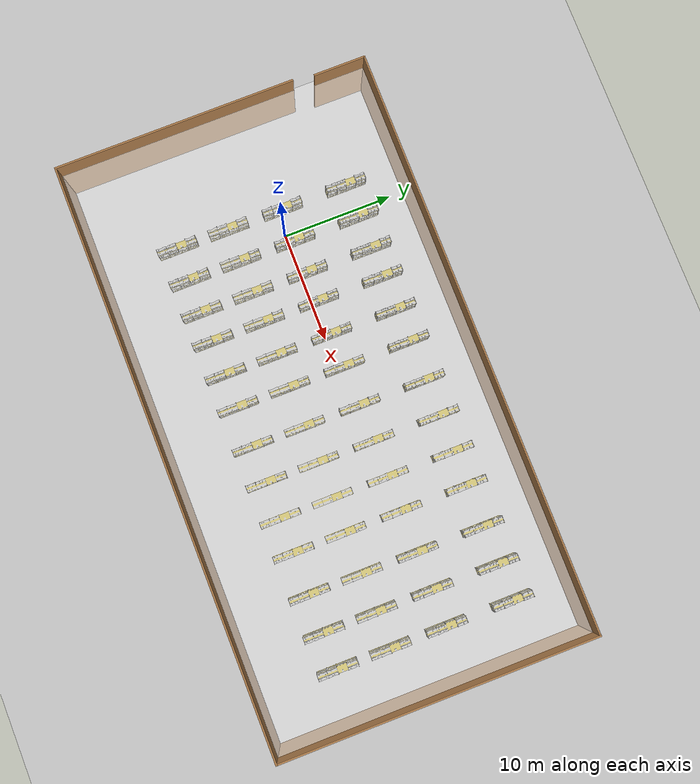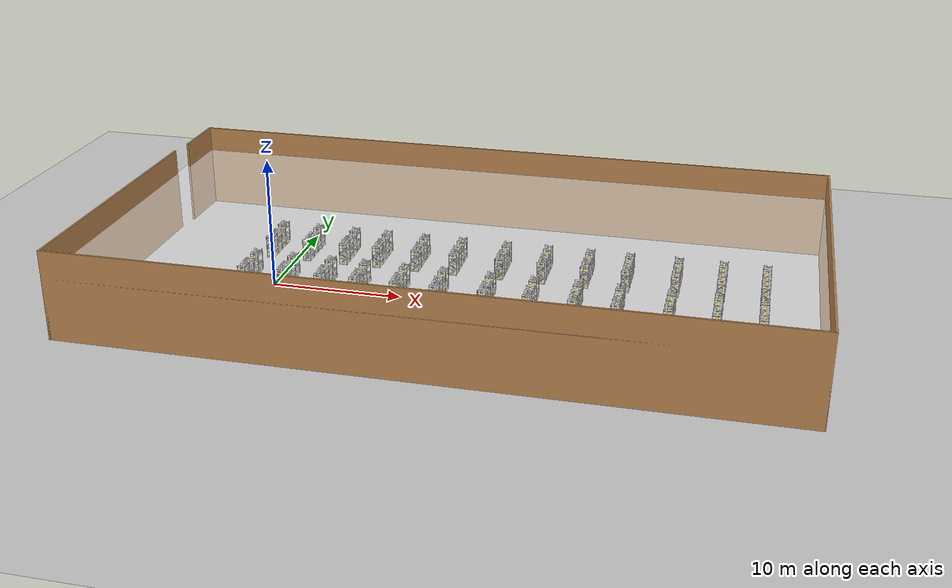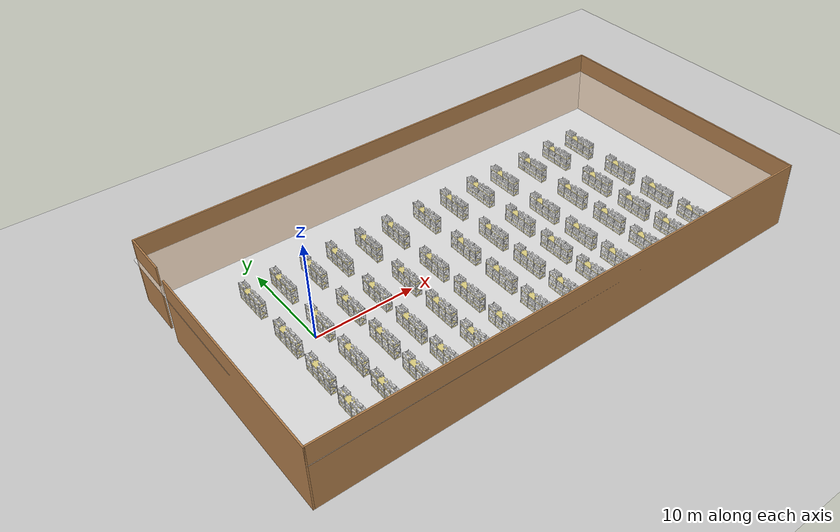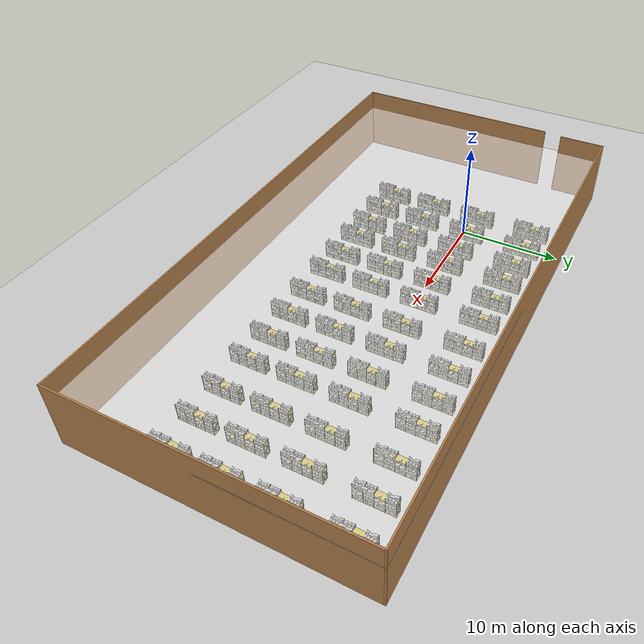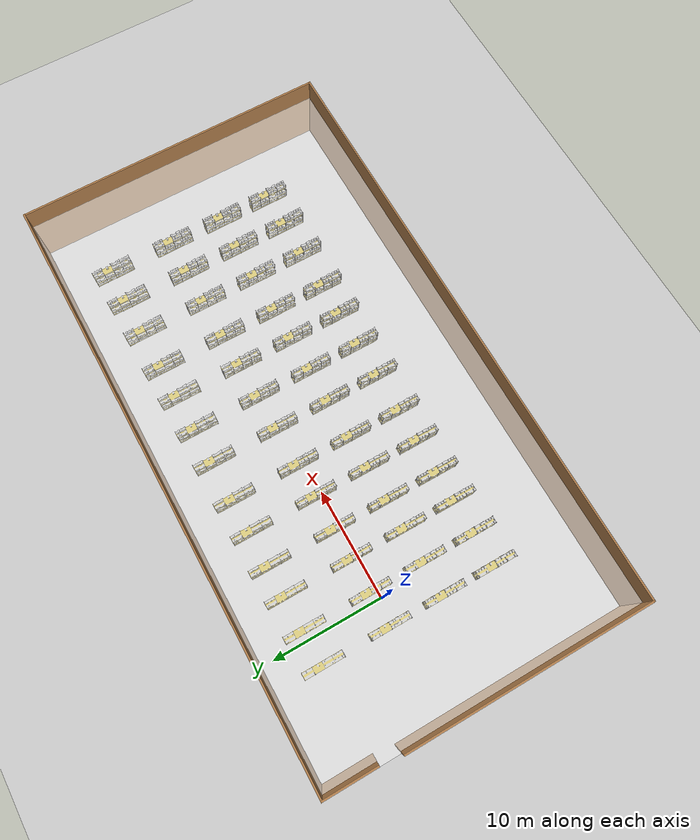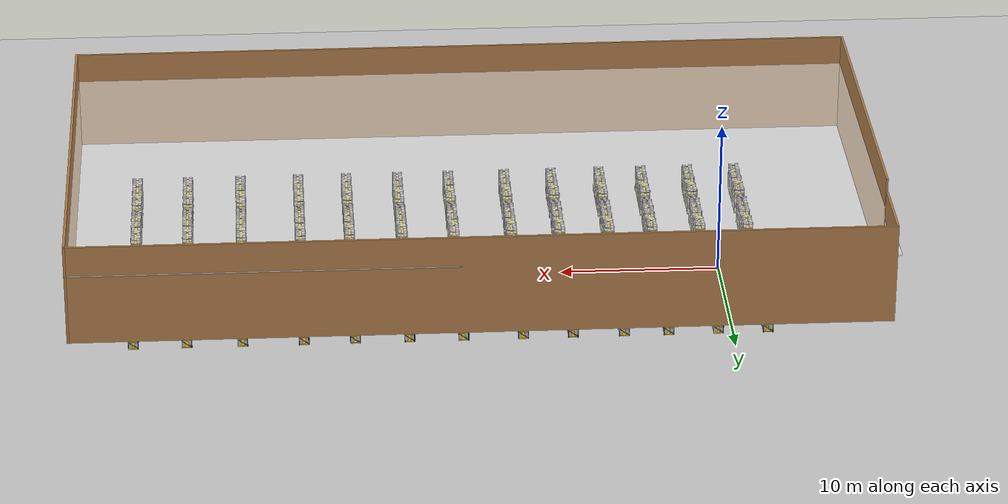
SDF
<sdf version="1.7">
 <world name="default">
  <light name="sun" type="directional">
   <pose>0 0 10 0 -0 0</pose>
   <diffuse>0.8 0.8 0.8 1</diffuse>
   <specular>0.2 0.2 0.2 1</specular>
   <attenuation>
    <range>1000</range>
    <constant>0.9</constant>
    <linear>0.01</linear>
    <quadratic>0.001</quadratic>
   </attenuation>
   <direction>-0.5 0.1 -0.9</direction>
   <spot><inner_angle>0</inner_angle><outer_angle>0</outer_angle><falloff>0</falloff></spot>
  </light>
  <model name="ground_plane">
   <static>1</static>
   <link name="link">
    <collision name="collision">
     <geometry><plane><normal>0 0 1</normal><size>100 100</size></plane></geometry>
     <surface>
      <contact><collide_bitmask>65535</collide_bitmask></contact>
      <friction><ode><mu>100</mu><mu2>50</mu2></ode></friction>
     </surface>
    </collision>
    <visual name="visual">
     <cast_shadows>0</cast_shadows>
     <geometry><plane><normal>0 0 1</normal><size>100 100</size></plane></geometry>
     <material>
      <script><uri>file://media/materials/scripts/gazebo.material</uri><name>Gazebo/Grey</name></script>
     </material>
    </visual>
   </link>
  </model>
  <gravity>0 0 -9.8</gravity>
  <magnetic_field>6e-06 2.3e-05 -4.2e-05</magnetic_field>
  <atmosphere type="adiabatic"/>
  <physics type="ode">
   <max_step_size>0.001</max_step_size>
   <real_time_factor>1</real_time_factor>
   <real_time_update_rate>1000</real_time_update_rate>
  </physics>
  <scene><ambient>0.4 0.4 0.4 1</ambient><background>0.7 0.7 0.7 1</background><shadows>1</shadows></scene>
  <spherical_coordinates>
   <surface_model>EARTH_WGS84</surface_model>
   <latitude_deg>0</latitude_deg>
   <longitude_deg>0</longitude_deg>
   <elevation>0</elevation>
   <heading_deg>0</heading_deg>
  </spherical_coordinates>
  <model name="Untitled">
   <pose>15.454 -2.50054 4 0 -0 0</pose>
   <link name="Floor_0">
    <collision name="Floor_0_Collision">
     <geometry><box><size>50.5 27 0.1</size></box></geometry>
     <pose>0 0 0.05 0 -0 0</pose>
    </collision>
    <visual name="Floor_0_Visual">
     <pose>0 0 0.05 0 -0 0</pose>
     <geometry><box><size>50.5 27 0.1</size></box></geometry>
     <material><ambient>1 1 1 0.5</ambient><diffuse>1 1 1 0.5</diffuse></material>
     <meta><layer>1</layer></meta>
    </visual>
    <pose>1e-06 0 2.5 0 -0 0</pose>
   </link>
   <link name="Wall_0">
    <collision name="Wall_0_Collision">
     <geometry><box><size>20.75 0.15 6.5</size></box></geometry>
     <pose>0 0 1.25 0 -0 0</pose>
    </collision>
    <visual name="Wall_0_Visual">
     <pose>0 0 1.25 0 -0 0</pose>
     <geometry><box><size>20.75 0.15 6.5</size></box></geometry>
     <material>
      <script><uri>file://media/materials/scripts/gazebo.material</uri><name>Gazebo/Wood</name></script>
      <ambient>1 1 1 1</ambient>
     </material>
     <meta><layer>0</layer></meta>
    </visual>
    <pose>-25.175 -3.125 0 0 -0 -1.5708</pose>
   </link>
   <link name="Wall_1">
    <collision name="Wall_1_Collision">
     <geometry><box><size>50.5 0.15 6.5</size></box></geometry>
     <pose>0 0 1.25 0 -0 0</pose>
    </collision>
    <visual name="Wall_1_Visual">
     <pose>0 0 1.25 0 -0 0</pose>
     <geometry><box><size>50.5 0.15 6.5</size></box></geometry>
     <material>
      <script><uri>file://media/materials/scripts/gazebo.material</uri><name>Gazebo/Wood</name></script>
      <ambient>1 1 1 1</ambient>
     </material>
     <meta><layer>0</layer></meta>
    </visual>
    <pose>0 -13.425 0 0 -0 0</pose>
   </link>
   <link name="Wall_2">
    <collision name="Wall_2_Collision">
     <geometry><box><size>27 0.15 6.5</size></box></geometry>
     <pose>0 0 1.25 0 -0 0</pose>
    </collision>
    <visual name="Wall_2_Visual">
     <pose>0 0 1.25 0 -0 0</pose>
     <geometry><box><size>27 0.15 6.5</size></box></geometry>
     <material>
      <script><uri>file://media/materials/scripts/gazebo.material</uri><name>Gazebo/Wood</name></script>
      <ambient>1 1 1 1</ambient>
     </material>
     <meta><layer>0</layer></meta>
    </visual>
    <pose>25.175 0 0 0 -0 1.5708</pose>
   </link>
   <link name="Wall_3">
    <collision name="Wall_3_Collision">
     <geometry><box><size>50.25 0.15 6.5</size></box></geometry>
     <pose>0 0 1.25 0 -0 0</pose>
    </collision>
    <visual name="Wall_3_Visual">
     <pose>0 0 1.25 0 -0 0</pose>
     <geometry><box><size>50.25 0.15 6.5</size></box></geometry>
     <material>
      <script><uri>file://media/materials/scripts/gazebo.material</uri><name>Gazebo/Wood</name></script>
      <ambient>1 1 1 1</ambient>
     </material>
     <meta><layer>0</layer></meta>
    </visual>
    <pose>0.125 13.425 0 0 -0 3.14159</pose>
   </link>
   <link name="Wall_4">
    <collision name="Wall_4_Collision">
     <geometry><box><size>4.5 0.15 6.5</size></box></geometry>
     <pose>0 0 1.25 0 -0 0</pose>
    </collision>
    <visual name="Wall_4_Visual">
     <pose>0 0 1.25 0 -0 0</pose>
     <geometry><box><size>4.5 0.15 6.5</size></box></geometry>
     <material>
      <script><uri>file://media/materials/scripts/gazebo.material</uri><name>Gazebo/Wood</name></script>
      <ambient>1 1 1 1</ambient>
     </material>
     <meta><layer>0</layer></meta>
    </visual>
    <pose>-24.925 11.25 0 0 -0 -1.5708</pose>
   </link>
   <static>1</static>
  </model>
  <model name="shelf_aruco">
   <pose>-2.17709 -8.77278 0 0 -0 1.57253</pose>
   <link name="shelf_base">
    <pose>-0.5 0 0 0 -0 0</pose>
    <collision name="shelf_chassi_collision">
     <pose>0 0 0.9 0 -0 0</pose>
     <geometry><box><size>3.6 0.6 1.8</size></box></geometry>
    </collision>
    <visual name="shelf_chassi_visual">
     <geometry>
      <mesh>
       <scale>0.2 0.3 0.3</scale>
       <uri>../astra_gazebo_models/Shelf_with_ARUco_boxes/meshes/shelf_big_movai.dae</uri>
      </mesh>
     </geometry>
    </visual>
   </link>
   <static>1</static>
  </model>
  <model name="shelf_aruco_clone">
   <pose>-2.17709 -4 0 0 -0 1.57253</pose>
   <link name="shelf_base">
    <pose>-0.5 0 0 0 -0 0</pose>
    <collision name="shelf_chassi_collision">
     <pose>0 0 0.9 0 -0 0</pose>
     <geometry><box><size>3.6 0.6 1.8</size></box></geometry>
    </collision>
    <visual name="shelf_chassi_visual">
     <geometry>
      <mesh>
       <scale>0.2 0.3 0.3</scale>
       <uri>../astra_gazebo_models/Shelf_with_ARUco_boxes/meshes/shelf_big_movai.dae</uri>
      </mesh>
     </geometry>
    </visual>
   </link>
   <static>1</static>
  </model>
  <model name="shelf_aruco_clone_clone">
   <pose>-2.17709 1.10242 0 0 -0 1.57253</pose>
   <link name="shelf_base">
    <pose>-0.5 0 0 0 -0 0</pose>
    <collision name="shelf_chassi_collision">
     <pose>0 0 0.9 0 -0 0</pose>
     <geometry><box><size>3.6 0.6 1.8</size></box></geometry>
    </collision>
    <visual name="shelf_chassi_visual">
     <geometry>
      <mesh>
       <scale>0.2 0.3 0.3</scale>
       <uri>../astra_gazebo_models/Shelf_with_ARUco_boxes/meshes/shelf_big_movai.dae</uri>
      </mesh>
     </geometry>
    </visual>
   </link>
   <static>1</static>
  </model>
  <model name="shelf_aruco_clone_clone_0">
   <pose>-2.17709 7.12586 0 0 -0 1.57253</pose>
   <link name="shelf_base">
    <pose>-0.5 0 0 0 -0 0</pose>
    <collision name="shelf_chassi_collision">
     <pose>0 0 0.9 0 -0 0</pose>
     <geometry><box><size>3.6 0.6 1.8</size></box></geometry>
    </collision>
    <visual name="shelf_chassi_visual">
     <geometry>
      <mesh>
       <scale>0.2 0.3 0.3</scale>
       <uri>../astra_gazebo_models/Shelf_with_ARUco_boxes/meshes/shelf_big_movai.dae</uri>
      </mesh>
     </geometry>
    </visual>
   </link>
   <static>1</static>
  </model>
  <model name="shelf_aruco_clone_1">
   <pose>0.89089 7.12586 0 0 -0 1.57253</pose>
   <link name="shelf_base">
    <pose>-0.5 0 0 0 -0 0</pose>
    <collision name="shelf_chassi_collision">
     <pose>0 0 0.9 0 -0 0</pose>
     <geometry><box><size>3.6 0.6 1.8</size></box></geometry>
    </collision>
    <visual name="shelf_chassi_visual">
     <geometry>
      <mesh>
       <scale>0.2 0.3 0.3</scale>
       <uri>../astra_gazebo_models/Shelf_with_ARUco_boxes/meshes/shelf_big_movai.dae</uri>
      </mesh>
     </geometry>
    </visual>
   </link>
   <static>1</static>
  </model>
  <model name="shelf_aruco_clone_1_clone">
   <pose>3.95435 7.12586 0 0 -0 1.57253</pose>
   <link name="shelf_base">
    <pose>-0.5 0 0 0 -0 0</pose>
    <collision name="shelf_chassi_collision">
     <pose>0 0 0.9 0 -0 0</pose>
     <geometry><box><size>3.6 0.6 1.8</size></box></geometry>
    </collision>
    <visual name="shelf_chassi_visual">
     <geometry>
      <mesh>
       <scale>0.2 0.3 0.3</scale>
       <uri>../astra_gazebo_models/Shelf_with_ARUco_boxes/meshes/shelf_big_movai.dae</uri>
      </mesh>
     </geometry>
    </visual>
   </link>
   <static>1</static>
  </model>
  <model name="shelf_aruco_clone_1_clone_0">
   <pose>6.69861 7.12586 0 0 -0 1.57253</pose>
   <link name="shelf_base">
    <pose>-0.5 0 0 0 -0 0</pose>
    <collision name="shelf_chassi_collision">
     <pose>0 0 0.9 0 -0 0</pose>
     <geometry><box><size>3.6 0.6 1.8</size></box></geometry>
    </collision>
    <visual name="shelf_chassi_visual">
     <geometry>
      <mesh>
       <scale>0.2 0.3 0.3</scale>
       <uri>../astra_gazebo_models/Shelf_with_ARUco_boxes/meshes/shelf_big_movai.dae</uri>
      </mesh>
     </geometry>
    </visual>
   </link>
   <static>1</static>
  </model>
  <model name="shelf_aruco_clone_1_clone_1">
   <pose>9.85525 7.12586 0 0 -0 1.57253</pose>
   <link name="shelf_base">
    <pose>-0.5 0 0 0 -0 0</pose>
    <collision name="shelf_chassi_collision">
     <pose>0 0 0.9 0 -0 0</pose>
     <geometry><box><size>3.6 0.6 1.8</size></box></geometry>
    </collision>
    <visual name="shelf_chassi_visual">
     <geometry>
      <mesh>
       <scale>0.2 0.3 0.3</scale>
       <uri>../astra_gazebo_models/Shelf_with_ARUco_boxes/meshes/shelf_big_movai.dae</uri>
      </mesh>
     </geometry>
    </visual>
   </link>
   <static>1</static>
  </model>
  <model name="shelf_aruco_clone_1_clone_2">
   <pose>12.9196 7.12586 0 0 -0 1.57253</pose>
   <link name="shelf_base">
    <pose>-0.5 0 0 0 -0 0</pose>
    <collision name="shelf_chassi_collision">
     <pose>0 0 0.9 0 -0 0</pose>
     <geometry><box><size>3.6 0.6 1.8</size></box></geometry>
    </collision>
    <visual name="shelf_chassi_visual">
     <geometry>
      <mesh>
       <scale>0.2 0.3 0.3</scale>
       <uri>../astra_gazebo_models/Shelf_with_ARUco_boxes/meshes/shelf_big_movai.dae</uri>
      </mesh>
     </geometry>
    </visual>
   </link>
   <static>1</static>
  </model>
  <model name="shelf_aruco_clone_1_clone_3">
   <pose>16.5878 7.12586 0 0 -0 1.57253</pose>
   <link name="shelf_base">
    <pose>-0.5 0 0 0 -0 0</pose>
    <collision name="shelf_chassi_collision">
     <pose>0 0 0.9 0 -0 0</pose>
     <geometry><box><size>3.6 0.6 1.8</size></box></geometry>
    </collision>
    <visual name="shelf_chassi_visual">
     <geometry>
      <mesh>
       <scale>0.2 0.3 0.3</scale>
       <uri>../astra_gazebo_models/Shelf_with_ARUco_boxes/meshes/shelf_big_movai.dae</uri>
      </mesh>
     </geometry>
    </visual>
   </link>
   <static>1</static>
  </model>
  <model name="shelf_aruco_clone_1_clone_4">
   <pose>19.8997 7.12586 0 0 -0 1.57253</pose>
   <link name="shelf_base">
    <pose>-0.5 0 0 0 -0 0</pose>
    <collision name="shelf_chassi_collision">
     <pose>0 0 0.9 0 -0 0</pose>
     <geometry><box><size>3.6 0.6 1.8</size></box></geometry>
    </collision>
    <visual name="shelf_chassi_visual">
     <geometry>
      <mesh>
       <scale>0.2 0.3 0.3</scale>
       <uri>../astra_gazebo_models/Shelf_with_ARUco_boxes/meshes/shelf_big_movai.dae</uri>
      </mesh>
     </geometry>
    </visual>
   </link>
   <static>1</static>
  </model>
  <model name="shelf_aruco_clone_1_clone_5">
   <pose>23.2384 7.12586 0 0 -0 1.57253</pose>
   <link name="shelf_base">
    <pose>-0.5 0 0 0 -0 0</pose>
    <collision name="shelf_chassi_collision">
     <pose>0 0 0.9 0 -0 0</pose>
     <geometry><box><size>3.6 0.6 1.8</size></box></geometry>
    </collision>
    <visual name="shelf_chassi_visual">
     <geometry>
      <mesh>
       <scale>0.2 0.3 0.3</scale>
       <uri>../astra_gazebo_models/Shelf_with_ARUco_boxes/meshes/shelf_big_movai.dae</uri>
      </mesh>
     </geometry>
    </visual>
   </link>
   <static>1</static>
  </model>
  <model name="shelf_aruco_clone_1_clone_6">
   <pose>26.3764 7.12586 0 0 -0 1.57253</pose>
   <link name="shelf_base">
    <pose>-0.5 0 0 0 -0 0</pose>
    <collision name="shelf_chassi_collision">
     <pose>0 0 0.9 0 -0 0</pose>
     <geometry><box><size>3.6 0.6 1.8</size></box></geometry>
    </collision>
    <visual name="shelf_chassi_visual">
     <geometry>
      <mesh>
       <scale>0.2 0.3 0.3</scale>
       <uri>../astra_gazebo_models/Shelf_with_ARUco_boxes/meshes/shelf_big_movai.dae</uri>
      </mesh>
     </geometry>
    </visual>
   </link>
   <static>1</static>
  </model>
  <model name="shelf_aruco_clone_1_clone_7">
   <pose>30.1327 7.12586 0 0 -0 1.57253</pose>
   <link name="shelf_base">
    <pose>-0.5 0 0 0 -0 0</pose>
    <collision name="shelf_chassi_collision">
     <pose>0 0 0.9 0 -0 0</pose>
     <geometry><box><size>3.6 0.6 1.8</size></box></geometry>
    </collision>
    <visual name="shelf_chassi_visual">
     <geometry>
      <mesh>
       <scale>0.2 0.3 0.3</scale>
       <uri>../astra_gazebo_models/Shelf_with_ARUco_boxes/meshes/shelf_big_movai.dae</uri>
      </mesh>
     </geometry>
    </visual>
   </link>
   <static>1</static>
  </model>
  <model name="shelf_aruco_clone_1_clone_8">
   <pose>33.5427 7.12586 0 0 -0 1.57253</pose>
   <link name="shelf_base">
    <pose>-0.5 0 0 0 -0 0</pose>
    <collision name="shelf_chassi_collision">
     <pose>0 0 0.9 0 -0 0</pose>
     <geometry><box><size>3.6 0.6 1.8</size></box></geometry>
    </collision>
    <visual name="shelf_chassi_visual">
     <geometry>
      <mesh>
       <scale>0.2 0.3 0.3</scale>
       <uri>../astra_gazebo_models/Shelf_with_ARUco_boxes/meshes/shelf_big_movai.dae</uri>
      </mesh>
     </geometry>
    </visual>
   </link>
   <static>1</static>
  </model>
  <model name="shelf_aruco_clone_1_clone_9">
   <pose>36.8157 7.12586 0 0 -0 1.57253</pose>
   <link name="shelf_base">
    <pose>-0.5 0 0 0 -0 0</pose>
    <collision name="shelf_chassi_collision">
     <pose>0 0 0.9 0 -0 0</pose>
     <geometry><box><size>3.6 0.6 1.8</size></box></geometry>
    </collision>
    <visual name="shelf_chassi_visual">
     <geometry>
      <mesh>
       <scale>0.2 0.3 0.3</scale>
       <uri>../astra_gazebo_models/Shelf_with_ARUco_boxes/meshes/shelf_big_movai.dae</uri>
      </mesh>
     </geometry>
    </visual>
   </link>
   <static>1</static>
  </model>
  <model name="shelf_aruco_clone_clone_0_clone">
   <pose>0.89089 1.10242 0 0 -0 1.57253</pose>
   <link name="shelf_base">
    <pose>-0.5 0 0 0 -0 0</pose>
    <collision name="shelf_chassi_collision">
     <pose>0 0 0.9 0 -0 0</pose>
     <geometry><box><size>3.6 0.6 1.8</size></box></geometry>
    </collision>
    <visual name="shelf_chassi_visual">
     <geometry>
      <mesh>
       <scale>0.2 0.3 0.3</scale>
       <uri>../astra_gazebo_models/Shelf_with_ARUco_boxes/meshes/shelf_big_movai.dae</uri>
      </mesh>
     </geometry>
    </visual>
   </link>
   <static>1</static>
  </model>
  <model name="shelf_aruco_clone_clone_0_clone_0">
   <pose>3.95435 1.10242 0 0 -0 1.57253</pose>
   <link name="shelf_base">
    <pose>-0.5 0 0 0 -0 0</pose>
    <collision name="shelf_chassi_collision">
     <pose>0 0 0.9 0 -0 0</pose>
     <geometry><box><size>3.6 0.6 1.8</size></box></geometry>
    </collision>
    <visual name="shelf_chassi_visual">
     <geometry>
      <mesh>
       <scale>0.2 0.3 0.3</scale>
       <uri>../astra_gazebo_models/Shelf_with_ARUco_boxes/meshes/shelf_big_movai.dae</uri>
      </mesh>
     </geometry>
    </visual>
   </link>
   <static>1</static>
  </model>
  <model name="shelf_aruco_clone_clone_0_clone_1">
   <pose>6.69861 1.10242 0 0 -0 1.57253</pose>
   <link name="shelf_base">
    <pose>-0.5 0 0 0 -0 0</pose>
    <collision name="shelf_chassi_collision">
     <pose>0 0 0.9 0 -0 0</pose>
     <geometry><box><size>3.6 0.6 1.8</size></box></geometry>
    </collision>
    <visual name="shelf_chassi_visual">
     <geometry>
      <mesh>
       <scale>0.2 0.3 0.3</scale>
       <uri>../astra_gazebo_models/Shelf_with_ARUco_boxes/meshes/shelf_big_movai.dae</uri>
      </mesh>
     </geometry>
    </visual>
   </link>
   <static>1</static>
  </model>
  <model name="shelf_aruco_clone_clone_0_clone_2">
   <pose>9.85525 1.10242 0 0 -0 1.57253</pose>
   <link name="shelf_base">
    <pose>-0.5 0 0 0 -0 0</pose>
    <collision name="shelf_chassi_collision">
     <pose>0 0 0.9 0 -0 0</pose>
     <geometry><box><size>3.6 0.6 1.8</size></box></geometry>
    </collision>
    <visual name="shelf_chassi_visual">
     <geometry>
      <mesh>
       <scale>0.2 0.3 0.3</scale>
       <uri>../astra_gazebo_models/Shelf_with_ARUco_boxes/meshes/shelf_big_movai.dae</uri>
      </mesh>
     </geometry>
    </visual>
   </link>
   <static>1</static>
  </model>
  <model name="shelf_aruco_clone_clone_0_clone_3">
   <pose>12.9196 1.10242 0 0 -0 1.57253</pose>
   <link name="shelf_base">
    <pose>-0.5 0 0 0 -0 0</pose>
    <collision name="shelf_chassi_collision">
     <pose>0 0 0.9 0 -0 0</pose>
     <geometry><box><size>3.6 0.6 1.8</size></box></geometry>
    </collision>
    <visual name="shelf_chassi_visual">
     <geometry>
      <mesh>
       <scale>0.2 0.3 0.3</scale>
       <uri>../astra_gazebo_models/Shelf_with_ARUco_boxes/meshes/shelf_big_movai.dae</uri>
      </mesh>
     </geometry>
    </visual>
   </link>
   <static>1</static>
  </model>
  <model name="shelf_aruco_clone_clone_0_clone_4">
   <pose>16.5878 1.10242 0 0 -0 1.57253</pose>
   <link name="shelf_base">
    <pose>-0.5 0 0 0 -0 0</pose>
    <collision name="shelf_chassi_collision">
     <pose>0 0 0.9 0 -0 0</pose>
     <geometry><box><size>3.6 0.6 1.8</size></box></geometry>
    </collision>
    <visual name="shelf_chassi_visual">
     <geometry>
      <mesh>
       <scale>0.2 0.3 0.3</scale>
       <uri>../astra_gazebo_models/Shelf_with_ARUco_boxes/meshes/shelf_big_movai.dae</uri>
      </mesh>
     </geometry>
    </visual>
   </link>
   <static>1</static>
  </model>
  <model name="shelf_aruco_clone_clone_0_clone_5">
   <pose>19.8997 1.10242 0 0 -0 1.57253</pose>
   <link name="shelf_base">
    <pose>-0.5 0 0 0 -0 0</pose>
    <collision name="shelf_chassi_collision">
     <pose>0 0 0.9 0 -0 0</pose>
     <geometry><box><size>3.6 0.6 1.8</size></box></geometry>
    </collision>
    <visual name="shelf_chassi_visual">
     <geometry>
      <mesh>
       <scale>0.2 0.3 0.3</scale>
       <uri>../astra_gazebo_models/Shelf_with_ARUco_boxes/meshes/shelf_big_movai.dae</uri>
      </mesh>
     </geometry>
    </visual>
   </link>
   <static>1</static>
  </model>
  <model name="shelf_aruco_clone_clone_0_clone_6">
   <pose>23.2384 1.10242 0 0 -0 1.57253</pose>
   <link name="shelf_base">
    <pose>-0.5 0 0 0 -0 0</pose>
    <collision name="shelf_chassi_collision">
     <pose>0 0 0.9 0 -0 0</pose>
     <geometry><box><size>3.6 0.6 1.8</size></box></geometry>
    </collision>
    <visual name="shelf_chassi_visual">
     <geometry>
      <mesh>
       <scale>0.2 0.3 0.3</scale>
       <uri>../astra_gazebo_models/Shelf_with_ARUco_boxes/meshes/shelf_big_movai.dae</uri>
      </mesh>
     </geometry>
    </visual>
   </link>
   <static>1</static>
  </model>
  <model name="shelf_aruco_clone_clone_0_clone_7">
   <pose>26.3764 1.10242 0 0 -0 1.57253</pose>
   <link name="shelf_base">
    <pose>-0.5 0 0 0 -0 0</pose>
    <collision name="shelf_chassi_collision">
     <pose>0 0 0.9 0 -0 0</pose>
     <geometry><box><size>3.6 0.6 1.8</size></box></geometry>
    </collision>
    <visual name="shelf_chassi_visual">
     <geometry>
      <mesh>
       <scale>0.2 0.3 0.3</scale>
       <uri>../astra_gazebo_models/Shelf_with_ARUco_boxes/meshes/shelf_big_movai.dae</uri>
      </mesh>
     </geometry>
    </visual>
   </link>
   <static>1</static>
  </model>
  <model name="shelf_aruco_clone_clone_0_clone_8">
   <pose>30.1327 1.10242 0 0 -0 1.57253</pose>
   <link name="shelf_base">
    <pose>-0.5 0 0 0 -0 0</pose>
    <collision name="shelf_chassi_collision">
     <pose>0 0 0.9 0 -0 0</pose>
     <geometry><box><size>3.6 0.6 1.8</size></box></geometry>
    </collision>
    <visual name="shelf_chassi_visual">
     <geometry>
      <mesh>
       <scale>0.2 0.3 0.3</scale>
       <uri>../astra_gazebo_models/Shelf_with_ARUco_boxes/meshes/shelf_big_movai.dae</uri>
      </mesh>
     </geometry>
    </visual>
   </link>
   <static>1</static>
  </model>
  <model name="shelf_aruco_clone_clone_0_clone_9">
   <pose>33.5427 1.10242 0 0 -0 1.57253</pose>
   <link name="shelf_base">
    <pose>-0.5 0 0 0 -0 0</pose>
    <collision name="shelf_chassi_collision">
     <pose>0 0 0.9 0 -0 0</pose>
     <geometry><box><size>3.6 0.6 1.8</size></box></geometry>
    </collision>
    <visual name="shelf_chassi_visual">
     <geometry>
      <mesh>
       <scale>0.2 0.3 0.3</scale>
       <uri>../astra_gazebo_models/Shelf_with_ARUco_boxes/meshes/shelf_big_movai.dae</uri>
      </mesh>
     </geometry>
    </visual>
   </link>
   <static>1</static>
  </model>
  <model name="shelf_aruco_clone_clone_0_clone_10">
   <pose>36.8157 1.10242 0 0 -0 1.57253</pose>
   <link name="shelf_base">
    <pose>-0.5 0 0 0 -0 0</pose>
    <collision name="shelf_chassi_collision">
     <pose>0 0 0.9 0 -0 0</pose>
     <geometry><box><size>3.6 0.6 1.8</size></box></geometry>
    </collision>
    <visual name="shelf_chassi_visual">
     <geometry>
      <mesh>
       <scale>0.2 0.3 0.3</scale>
       <uri>../astra_gazebo_models/Shelf_with_ARUco_boxes/meshes/shelf_big_movai.dae</uri>
      </mesh>
     </geometry>
    </visual>
   </link>
   <static>1</static>
  </model>
  <model name="shelf_aruco_clone_clone_0_clone_0_clone">
   <pose>0.89089 -4 0 0 -0 1.57253</pose>
   <link name="shelf_base">
    <pose>-0.5 0 0 0 -0 0</pose>
    <collision name="shelf_chassi_collision">
     <pose>0 0 0.9 0 -0 0</pose>
     <geometry><box><size>3.6 0.6 1.8</size></box></geometry>
    </collision>
    <visual name="shelf_chassi_visual">
     <geometry>
      <mesh>
       <scale>0.2 0.3 0.3</scale>
       <uri>../astra_gazebo_models/Shelf_with_ARUco_boxes/meshes/shelf_big_movai.dae</uri>
      </mesh>
     </geometry>
    </visual>
   </link>
   <static>1</static>
  </model>
  <model name="shelf_aruco_clone_clone_0_clone_0_clone_0">
   <pose>3.95435 -4 0 0 -0 1.57253</pose>
   <link name="shelf_base">
    <pose>-0.5 0 0 0 -0 0</pose>
    <collision name="shelf_chassi_collision">
     <pose>0 0 0.9 0 -0 0</pose>
     <geometry><box><size>3.6 0.6 1.8</size></box></geometry>
    </collision>
    <visual name="shelf_chassi_visual">
     <geometry>
      <mesh>
       <scale>0.2 0.3 0.3</scale>
       <uri>../astra_gazebo_models/Shelf_with_ARUco_boxes/meshes/shelf_big_movai.dae</uri>
      </mesh>
     </geometry>
    </visual>
   </link>
   <static>1</static>
  </model>
  <model name="shelf_aruco_clone_clone_0_clone_0_clone_1">
   <pose>6.69861 -4 0 0 -0 1.57253</pose>
   <link name="shelf_base">
    <pose>-0.5 0 0 0 -0 0</pose>
    <collision name="shelf_chassi_collision">
     <pose>0 0 0.9 0 -0 0</pose>
     <geometry><box><size>3.6 0.6 1.8</size></box></geometry>
    </collision>
    <visual name="shelf_chassi_visual">
     <geometry>
      <mesh>
       <scale>0.2 0.3 0.3</scale>
       <uri>../astra_gazebo_models/Shelf_with_ARUco_boxes/meshes/shelf_big_movai.dae</uri>
      </mesh>
     </geometry>
    </visual>
   </link>
   <static>1</static>
  </model>
  <model name="shelf_aruco_clone_clone_0_clone_0_clone_2">
   <pose>9.85525 -4 0 0 -0 1.57253</pose>
   <link name="shelf_base">
    <pose>-0.5 0 0 0 -0 0</pose>
    <collision name="shelf_chassi_collision">
     <pose>0 0 0.9 0 -0 0</pose>
     <geometry><box><size>3.6 0.6 1.8</size></box></geometry>
    </collision>
    <visual name="shelf_chassi_visual">
     <geometry>
      <mesh>
       <scale>0.2 0.3 0.3</scale>
       <uri>../astra_gazebo_models/Shelf_with_ARUco_boxes/meshes/shelf_big_movai.dae</uri>
      </mesh>
     </geometry>
    </visual>
   </link>
   <static>1</static>
  </model>
  <model name="shelf_aruco_clone_clone_0_clone_0_clone_3">
   <pose>12.9196 -4 0 0 -0 1.57253</pose>
   <link name="shelf_base">
    <pose>-0.5 0 0 0 -0 0</pose>
    <collision name="shelf_chassi_collision">
     <pose>0 0 0.9 0 -0 0</pose>
     <geometry><box><size>3.6 0.6 1.8</size></box></geometry>
    </collision>
    <visual name="shelf_chassi_visual">
     <geometry>
      <mesh>
       <scale>0.2 0.3 0.3</scale>
       <uri>../astra_gazebo_models/Shelf_with_ARUco_boxes/meshes/shelf_big_movai.dae</uri>
      </mesh>
     </geometry>
    </visual>
   </link>
   <static>1</static>
  </model>
  <model name="shelf_aruco_clone_clone_0_clone_0_clone_4">
   <pose>16.5878 -4 0 0 -0 1.57253</pose>
   <link name="shelf_base">
    <pose>-0.5 0 0 0 -0 0</pose>
    <collision name="shelf_chassi_collision">
     <pose>0 0 0.9 0 -0 0</pose>
     <geometry><box><size>3.6 0.6 1.8</size></box></geometry>
    </collision>
    <visual name="shelf_chassi_visual">
     <geometry>
      <mesh>
       <scale>0.2 0.3 0.3</scale>
       <uri>../astra_gazebo_models/Shelf_with_ARUco_boxes/meshes/shelf_big_movai.dae</uri>
      </mesh>
     </geometry>
    </visual>
   </link>
   <static>1</static>
  </model>
  <model name="shelf_aruco_clone_clone_0_clone_0_clone_5">
   <pose>19.8997 -4 0 0 -0 1.57253</pose>
   <link name="shelf_base">
    <pose>-0.5 0 0 0 -0 0</pose>
    <collision name="shelf_chassi_collision">
     <pose>0 0 0.9 0 -0 0</pose>
     <geometry><box><size>3.6 0.6 1.8</size></box></geometry>
    </collision>
    <visual name="shelf_chassi_visual">
     <geometry>
      <mesh>
       <scale>0.2 0.3 0.3</scale>
       <uri>../astra_gazebo_models/Shelf_with_ARUco_boxes/meshes/shelf_big_movai.dae</uri>
      </mesh>
     </geometry>
    </visual>
   </link>
   <static>1</static>
  </model>
  <model name="shelf_aruco_clone_clone_0_clone_0_clone_6">
   <pose>23.2384 -4 0 0 -0 1.57253</pose>
   <link name="shelf_base">
    <pose>-0.5 0 0 0 -0 0</pose>
    <collision name="shelf_chassi_collision">
     <pose>0 0 0.9 0 -0 0</pose>
     <geometry><box><size>3.6 0.6 1.8</size></box></geometry>
    </collision>
    <visual name="shelf_chassi_visual">
     <geometry>
      <mesh>
       <scale>0.2 0.3 0.3</scale>
       <uri>../astra_gazebo_models/Shelf_with_ARUco_boxes/meshes/shelf_big_movai.dae</uri>
      </mesh>
     </geometry>
    </visual>
   </link>
   <static>1</static>
  </model>
  <model name="shelf_aruco_clone_clone_0_clone_0_clone_7">
   <pose>26.3764 -4 0 0 -0 1.57253</pose>
   <link name="shelf_base">
    <pose>-0.5 0 0 0 -0 0</pose>
    <collision name="shelf_chassi_collision">
     <pose>0 0 0.9 0 -0 0</pose>
     <geometry><box><size>3.6 0.6 1.8</size></box></geometry>
    </collision>
    <visual name="shelf_chassi_visual">
     <geometry>
      <mesh>
       <scale>0.2 0.3 0.3</scale>
       <uri>../astra_gazebo_models/Shelf_with_ARUco_boxes/meshes/shelf_big_movai.dae</uri>
      </mesh>
     </geometry>
    </visual>
   </link>
   <static>1</static>
  </model>
  <model name="shelf_aruco_clone_clone_0_clone_0_clone_8">
   <pose>30.1327 -4 0 0 -0 1.57253</pose>
   <link name="shelf_base">
    <pose>-0.5 0 0 0 -0 0</pose>
    <collision name="shelf_chassi_collision">
     <pose>0 0 0.9 0 -0 0</pose>
     <geometry><box><size>3.6 0.6 1.8</size></box></geometry>
    </collision>
    <visual name="shelf_chassi_visual">
     <geometry>
      <mesh>
       <scale>0.2 0.3 0.3</scale>
       <uri>../astra_gazebo_models/Shelf_with_ARUco_boxes/meshes/shelf_big_movai.dae</uri>
      </mesh>
     </geometry>
    </visual>
   </link>
   <static>1</static>
  </model>
  <model name="shelf_aruco_clone_clone_0_clone_0_clone_9">
   <pose>33.5427 -4 0 0 -0 1.57253</pose>
   <link name="shelf_base">
    <pose>-0.5 0 0 0 -0 0</pose>
    <collision name="shelf_chassi_collision">
     <pose>0 0 0.9 0 -0 0</pose>
     <geometry><box><size>3.6 0.6 1.8</size></box></geometry>
    </collision>
    <visual name="shelf_chassi_visual">
     <geometry>
      <mesh>
       <scale>0.2 0.3 0.3</scale>
       <uri>../astra_gazebo_models/Shelf_with_ARUco_boxes/meshes/shelf_big_movai.dae</uri>
      </mesh>
     </geometry>
    </visual>
   </link>
   <static>1</static>
  </model>
  <model name="shelf_aruco_clone_clone_0_clone_0_clone_10">
   <pose>36.8157 -4 0 0 -0 1.57253</pose>
   <link name="shelf_base">
    <pose>-0.5 0 0 0 -0 0</pose>
    <collision name="shelf_chassi_collision">
     <pose>0 0 0.9 0 -0 0</pose>
     <geometry><box><size>3.6 0.6 1.8</size></box></geometry>
    </collision>
    <visual name="shelf_chassi_visual">
     <geometry>
      <mesh>
       <scale>0.2 0.3 0.3</scale>
       <uri>../astra_gazebo_models/Shelf_with_ARUco_boxes/meshes/shelf_big_movai.dae</uri>
      </mesh>
     </geometry>
    </visual>
   </link>
   <static>1</static>
  </model>
  <model name="shelf_aruco_clone_clone_0_clone_0_clone_11">
   <pose>0.89089 -8.77278 0 0 -0 1.57253</pose>
   <link name="shelf_base">
    <pose>-0.5 0 0 0 -0 0</pose>
    <collision name="shelf_chassi_collision">
     <pose>0 0 0.9 0 -0 0</pose>
     <geometry><box><size>3.6 0.6 1.8</size></box></geometry>
    </collision>
    <visual name="shelf_chassi_visual">
     <geometry>
      <mesh>
       <scale>0.2 0.3 0.3</scale>
       <uri>../astra_gazebo_models/Shelf_with_ARUco_boxes/meshes/shelf_big_movai.dae</uri>
      </mesh>
     </geometry>
    </visual>
   </link>
   <static>1</static>
  </model>
  <model name="shelf_aruco_clone_clone_0_clone_0_clone_12">
   <pose>3.95435 -8.77278 0 0 -0 1.57253</pose>
   <link name="shelf_base">
    <pose>-0.5 0 0 0 -0 0</pose>
    <collision name="shelf_chassi_collision">
     <pose>0 0 0.9 0 -0 0</pose>
     <geometry><box><size>3.6 0.6 1.8</size></box></geometry>
    </collision>
    <visual name="shelf_chassi_visual">
     <geometry>
      <mesh>
       <scale>0.2 0.3 0.3</scale>
       <uri>../astra_gazebo_models/Shelf_with_ARUco_boxes/meshes/shelf_big_movai.dae</uri>
      </mesh>
     </geometry>
    </visual>
   </link>
   <static>1</static>
  </model>
  <model name="shelf_aruco_clone_clone_0_clone_0_clone_13">
   <pose>6.69861 -8.77278 0 0 -0 1.57253</pose>
   <link name="shelf_base">
    <pose>-0.5 0 0 0 -0 0</pose>
    <collision name="shelf_chassi_collision">
     <pose>0 0 0.9 0 -0 0</pose>
     <geometry><box><size>3.6 0.6 1.8</size></box></geometry>
    </collision>
    <visual name="shelf_chassi_visual">
     <geometry>
      <mesh>
       <scale>0.2 0.3 0.3</scale>
       <uri>../astra_gazebo_models/Shelf_with_ARUco_boxes/meshes/shelf_big_movai.dae</uri>
      </mesh>
     </geometry>
    </visual>
   </link>
   <static>1</static>
  </model>
  <model name="shelf_aruco_clone_clone_0_clone_0_clone_14">
   <pose>9.85525 -8.77278 0 0 -0 1.57253</pose>
   <link name="shelf_base">
    <pose>-0.5 0 0 0 -0 0</pose>
    <collision name="shelf_chassi_collision">
     <pose>0 0 0.9 0 -0 0</pose>
     <geometry><box><size>3.6 0.6 1.8</size></box></geometry>
    </collision>
    <visual name="shelf_chassi_visual">
     <geometry>
      <mesh>
       <scale>0.2 0.3 0.3</scale>
       <uri>../astra_gazebo_models/Shelf_with_ARUco_boxes/meshes/shelf_big_movai.dae</uri>
      </mesh>
     </geometry>
    </visual>
   </link>
   <static>1</static>
  </model>
  <model name="shelf_aruco_clone_clone_0_clone_0_clone_15">
   <pose>12.9196 -8.77278 0 0 -0 1.57253</pose>
   <link name="shelf_base">
    <pose>-0.5 0 0 0 -0 0</pose>
    <collision name="shelf_chassi_collision">
     <pose>0 0 0.9 0 -0 0</pose>
     <geometry><box><size>3.6 0.6 1.8</size></box></geometry>
    </collision>
    <visual name="shelf_chassi_visual">
     <geometry>
      <mesh>
       <scale>0.2 0.3 0.3</scale>
       <uri>../astra_gazebo_models/Shelf_with_ARUco_boxes/meshes/shelf_big_movai.dae</uri>
      </mesh>
     </geometry>
    </visual>
   </link>
   <static>1</static>
  </model>
  <model name="shelf_aruco_clone_clone_0_clone_0_clone_16">
   <pose>16.5878 -8.77278 0 0 -0 1.57253</pose>
   <link name="shelf_base">
    <pose>-0.5 0 0 0 -0 0</pose>
    <collision name="shelf_chassi_collision">
     <pose>0 0 0.9 0 -0 0</pose>
     <geometry><box><size>3.6 0.6 1.8</size></box></geometry>
    </collision>
    <visual name="shelf_chassi_visual">
     <geometry>
      <mesh>
       <scale>0.2 0.3 0.3</scale>
       <uri>../astra_gazebo_models/Shelf_with_ARUco_boxes/meshes/shelf_big_movai.dae</uri>
      </mesh>
     </geometry>
    </visual>
   </link>
   <static>1</static>
  </model>
  <model name="shelf_aruco_clone_clone_0_clone_0_clone_17">
   <pose>19.8997 -8.77278 0 0 -0 1.57253</pose>
   <link name="shelf_base">
    <pose>-0.5 0 0 0 -0 0</pose>
    <collision name="shelf_chassi_collision">
     <pose>0 0 0.9 0 -0 0</pose>
     <geometry><box><size>3.6 0.6 1.8</size></box></geometry>
    </collision>
    <visual name="shelf_chassi_visual">
     <geometry>
      <mesh>
       <scale>0.2 0.3 0.3</scale>
       <uri>../astra_gazebo_models/Shelf_with_ARUco_boxes/meshes/shelf_big_movai.dae</uri>
      </mesh>
     </geometry>
    </visual>
   </link>
   <static>1</static>
  </model>
  <model name="shelf_aruco_clone_clone_0_clone_0_clone_18">
   <pose>23.2384 -8.77278 0 0 -0 1.57253</pose>
   <link name="shelf_base">
    <pose>-0.5 0 0 0 -0 0</pose>
    <collision name="shelf_chassi_collision">
     <pose>0 0 0.9 0 -0 0</pose>
     <geometry><box><size>3.6 0.6 1.8</size></box></geometry>
    </collision>
    <visual name="shelf_chassi_visual">
     <geometry>
      <mesh>
       <scale>0.2 0.3 0.3</scale>
       <uri>../astra_gazebo_models/Shelf_with_ARUco_boxes/meshes/shelf_big_movai.dae</uri>
      </mesh>
     </geometry>
    </visual>
   </link>
   <static>1</static>
  </model>
  <model name="shelf_aruco_clone_clone_0_clone_0_clone_19">
   <pose>26.3764 -8.77278 0 0 -0 1.57253</pose>
   <link name="shelf_base">
    <pose>-0.5 0 0 0 -0 0</pose>
    <collision name="shelf_chassi_collision">
     <pose>0 0 0.9 0 -0 0</pose>
     <geometry><box><size>3.6 0.6 1.8</size></box></geometry>
    </collision>
    <visual name="shelf_chassi_visual">
     <geometry>
      <mesh>
       <scale>0.2 0.3 0.3</scale>
       <uri>../astra_gazebo_models/Shelf_with_ARUco_boxes/meshes/shelf_big_movai.dae</uri>
      </mesh>
     </geometry>
    </visual>
   </link>
   <static>1</static>
  </model>
  <model name="shelf_aruco_clone_clone_0_clone_0_clone_20">
   <pose>30.1327 -8.77278 0 0 -0 1.57253</pose>
   <link name="shelf_base">
    <pose>-0.5 0 0 0 -0 0</pose>
    <collision name="shelf_chassi_collision">
     <pose>0 0 0.9 0 -0 0</pose>
     <geometry><box><size>3.6 0.6 1.8</size></box></geometry>
    </collision>
    <visual name="shelf_chassi_visual">
     <geometry>
      <mesh>
       <scale>0.2 0.3 0.3</scale>
       <uri>../astra_gazebo_models/Shelf_with_ARUco_boxes/meshes/shelf_big_movai.dae</uri>
      </mesh>
     </geometry>
    </visual>
   </link>
   <static>1</static>
  </model>
  <model name="shelf_aruco_clone_clone_0_clone_0_clone_21">
   <pose>33.5427 -8.77278 0 0 -0 1.57253</pose>
   <link name="shelf_base">
    <pose>-0.5 0 0 0 -0 0</pose>
    <collision name="shelf_chassi_collision">
     <pose>0 0 0.9 0 -0 0</pose>
     <geometry><box><size>3.6 0.6 1.8</size></box></geometry>
    </collision>
    <visual name="shelf_chassi_visual">
     <geometry>
      <mesh>
       <scale>0.2 0.3 0.3</scale>
       <uri>../astra_gazebo_models/Shelf_with_ARUco_boxes/meshes/shelf_big_movai.dae</uri>
      </mesh>
     </geometry>
    </visual>
   </link>
   <static>1</static>
  </model>
  <model name="shelf_aruco_clone_clone_0_clone_0_clone_22">
   <pose>36.8157 -8.77278 0 0 -0 1.57253</pose>
   <link name="shelf_base">
    <pose>-0.5 0 0 0 -0 0</pose>
    <collision name="shelf_chassi_collision">
     <pose>0 0 0.9 0 -0 0</pose>
     <geometry><box><size>3.6 0.6 1.8</size></box></geometry>
    </collision>
    <visual name="shelf_chassi_visual">
     <geometry>
      <mesh>
       <scale>0.2 0.3 0.3</scale>
       <uri>../astra_gazebo_models/Shelf_with_ARUco_boxes/meshes/shelf_big_movai.dae</uri>
      </mesh>
     </geometry>
    </visual>
   </link>
   <static>1</static>
  </model>
 </world>
</sdf>
